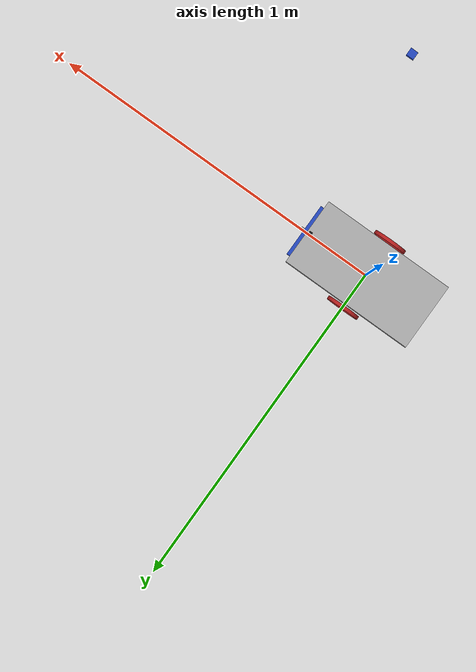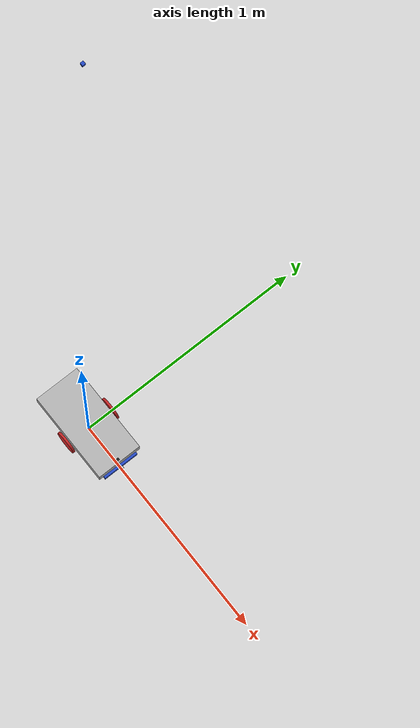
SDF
<?xml version="1.0"?>
<sdf version="1.6">
    <model name="line_robot2">
        <pose>0 0 0.08 0 0 0</pose>

        <!-- body -->
        <link name="body_link">
            <pose>0 0 0 0 0 0</pose>
            <inertial>
                <pose>-0.1 0 0 0 0 0</pose>
                <mass>1.0</mass>
                <inertia>
                    <ixx>0.1</ixx>
                    <ixy>0.0</ixy>
                    <ixz>0.0</ixz>
                    <iyy>0.1</iyy>
                    <iyz>0.0</iyz>
                    <izz>0.1</izz>
                </inertia>
            </inertial>
            <collision name="collision">
                <geometry>
                    <box>
                        <size>0.4 0.2 0.04</size>
                    </box>
                </geometry>
            </collision>
            <visual name="visual">
                <geometry>
                    <mesh>
                        <uri>model://line_robot2/meshes/car.dae</uri>
                    </mesh>
                </geometry>
                <material>
                    <script>
                        <uri>model://line_robot2/materials/scripts</uri>
                        <uri>model://line_robot2/materials/textures</uri>
                        <name>LineRobot2</name>
                    </script>
                </material>
            </visual>
        </link>

        <!-- Sensors -->
        <!-- lidar_link -->
        <link name="lidar_link">
            <pose>0.215 0 -0.03 0 0 0</pose>
            <inertial>
                <mass>0.1</mass>
                <inertia>
                    <ixx>0.1</ixx>
                    <ixy>0.0</ixy>
                    <ixz>0.0</ixz>
                    <iyy>0.1</iyy>
                    <iyz>0.0</iyz>
                    <izz>0.1</izz>
                </inertia>
            </inertial>
            <collision name="collision">
                <geometry>
                    <box>
                        <size>0.01 0.01 0.01</size>
                    </box>
                </geometry>
            </collision>
            <visual name="visual">
                <geometry>
                    <box>
                        <size>0.01 0.01 0.01</size>
                    </box>
                </geometry>
            </visual>
            <material>
                <script>
                    <uri>file://media/materials/scripts/gazebo.material</uri>
                    <name>Gazebo/Red</name>
                </script>
            </material>

            <!-- ray sensor -->
            <sensor name="sensor_ray" type="ray">
                <ray>
                    <scan>
                        <horizontal>
                            <samples>50</samples>
                            <resolution>1.0</resolution>
                            <min_angle>-0.5236</min_angle>
                            <max_angle>0.5236</max_angle>
                        </horizontal>
                    </scan>
                    <range>
                        <min>0.05</min>
                        <max>30.0</max>
                    </range>
                    <update_rate>0.01</update_rate>
                </ray>
                <always_on>true</always_on>
                <plugin name="laserscan" filename="libgazebo_ros_ray_sensor.so">
                    <ros>
                        <namespace>/ray</namespace>
                        <remapping>~/out:=laserscan</remapping>
                    </ros>
                    <output_type>sensor_msgs/LaserScan</output_type>
                </plugin>
            </sensor>
        </link>
        <!-- end lidar -->

        <!-- camera (World) -->
        <link name="world_camera_link">
            <pose>0.2 0 5 0 1.5707 0</pose>
            <inertial>
                <mass>0.001</mass>
                <inertia>
                    <ixx>0.01</ixx>
                    <ixy>0.0</ixy>
                    <ixz>0.0</ixz>
                    <iyy>0.01</iyy>
                    <iyz>0.0</iyz>
                    <izz>0.01</izz>
                </inertia>
            </inertial>
            <collision name="collision">
                <geometry>
                    <box>
                        <size>0.01 0.01 0.01</size>
                    </box>
                </geometry>
            </collision>
            <visual name="visual">
                <geometry>
                    <box>
                        <size>0.01 0.01 0.01</size>
                    </box>
                </geometry>
                <material>
                    <script>
                        <uri>file://media/materials/scripts/gazebo.material</uri>
                        <name>Gazebo/Blue</name>
                    </script>
                </material>
            </visual>

            <sensor type="camera" name="camera_world">
                <pose>-0.2 0 0 0 0 0</pose>
                <update_rate>10.0</update_rate>
                <always_on>true</always_on>
                <visualize>false</visualize>
                <camera name="head">
                    <horizontal_fov>0.64</horizontal_fov>
                    <image>
                        <width>720</width>
                        <height>480</height>
                        <format>R8G8B8</format>
                    </image>
                    <clip>
                        <near>0.221</near>
                        <far>300</far>
                    </clip>
                    <noise>
                        <type>gaussian</type>
                        <mean>0.0</mean>
                        <stddev>0.007</stddev>
                    </noise>
                </camera>
                <plugin name="camera_controller" filename="libgazebo_ros_camera.so">
                    <ros>
                        <namespace>demo_cam</namespace>
                        <remapping>image_raw:=image</remapping>
                        <remapping>camera_info:=camera_info</remapping>
                    </ros>
                </plugin>
            </sensor>
        </link>

        <!-- front camera -->
        <link name="camera_front_link">
            <pose>0.19 0 0.03 0 0 0</pose>
            <inertial>
                <mass>0.001</mass>
                <inertia>
                    <ixx>0.01</ixx>
                    <ixy>0.0</ixy>
                    <ixz>0.0</ixz>
                    <iyy>0.01</iyy>
                    <iyz>0.0</iyz>
                    <izz>0.01</izz>
                </inertia>
            </inertial>
            <collision name="collision">
                <geometry>
                    <box>
                        <size>0.01 0.01 0.01</size>
                    </box>
                </geometry>
            </collision>
            <visual name="visual">
                <geometry>
                    <box>
                        <size>0.01 0.01 0.01</size>
                    </box>
                </geometry>
                <material>
                    <script>
                        <uri>file://media/materials/scripts/gazebo.material</uri>
                        <name>Gazebo/Black</name>
                    </script>
                </material>
            </visual>

            <sensor type="camera" name="camera_front">
                <pose>-0.2 0 0 0 0 0</pose>
                <update_rate>10.0</update_rate>
                <always_on>true</always_on>
                <visualize>false</visualize>
                <camera name="head">
                    <horizontal_fov>0.64</horizontal_fov>
                    <image>
                        <width>640</width>
                        <height>360</height>
                        <format>R8G8B8</format>
                    </image>
                    <clip>
                        <near>0.221</near>
                        <far>300</far>
                    </clip>
                    <noise>
                        <type>gaussian</type>
                        <mean>0.0</mean>
                        <stddev>0.007</stddev>
                    </noise>
                </camera>
                <plugin name="camera_controller" filename="libgazebo_ros_camera.so">
                    <ros>
                        <namespace>camera_front</namespace>
                        <remapping>image_raw:=image</remapping>
                        <remapping>camera_info:=camera_info</remapping>
                    </ros>
                </plugin>
            </sensor>
        </link>

        <link name="left_wheel_link">
            <pose>0 0.11 -0.03 1.5707 0 0</pose>
            <inertial>
                <mass>0.1</mass>
                <inertia>
                    <ixx>0.01</ixx>
                    <ixy>0.0</ixy>
                    <ixz>0.0</ixz>
                    <iyy>0.01</iyy>
                    <iyz>0.0</iyz>
                    <izz>0.01</izz>
                </inertia>
            </inertial>
            <collision name="collision">
                <geometry>
                    <cylinder>
                        <radius>0.05</radius>
                        <length>0.01</length>
                    </cylinder>
                </geometry>
            </collision>
            <visual name="visual">
                <geometry>
                    <cylinder>
                        <radius>0.05</radius>
                        <length>0.01</length>
                    </cylinder>
                </geometry>
                <material>
                    <script>
                        <uri>file://media/materials/scripts/gazebo.material</uri>
                        <name>Gazebo/Red</name>
                    </script>
                </material>
            </visual>
        </link>

        <link name="right_wheel_link">
            <pose>0 -0.11 -0.03 1.5707 0 0</pose>
            <inertial>
                <mass>0.1</mass>
                <inertia>
                    <ixx>0.01</ixx>
                    <ixy>0.0</ixy>
                    <ixz>0.0</ixz>
                    <iyy>0.01</iyy>
                    <iyz>0.0</iyz>
                    <izz>0.01</izz>
                </inertia>
            </inertial>
            <collision name="collision">
                <geometry>
                    <cylinder>
                        <radius>0.05</radius>
                        <length>0.01</length>
                    </cylinder>
                </geometry>
            </collision>
            <visual name="visual">
                <geometry>
                    <cylinder>
                        <radius>0.05</radius>
                        <length>0.01</length>
                    </cylinder>
                </geometry>
                <material>
                    <script>
                        <uri>file://media/materials/scripts/gazebo.material</uri>
                        <name>Gazebo/Red</name>
                    </script>
                </material>
            </visual>
        </link>

        <link name="caster_link">
            <pose>-0.15 0 -0.03 0 0 0</pose>
            <inertial>
                <mass>0.1</mass>
                <inertia>
                    <ixx>0.01</ixx>
                    <ixy>0.0</ixy>
                    <ixz>0.0</ixz>
                    <iyy>0.01</iyy>
                    <iyz>0.0</iyz>
                    <izz>0.01</izz>
                </inertia>
            </inertial>
            <collision name="collision">
                <geometry>
                    <sphere>
                        <radius>0.05</radius>
                    </sphere>
                </geometry>
                <surface>
                    <friction>
                        <ode>
                            <mu>0.01</mu>
                            <mu2>0.01</mu2>
                        </ode>
                    </friction>
                </surface>
            </collision>
            <visual name="visual">
                <geometry>
                    <sphere>
                        <radius>0.05</radius>
                    </sphere>
                </geometry>
            </visual>
        </link>

        <link name="front_sensor_link">
            <pose>0.2 0 -0.03 0 1.5707 0</pose>
            <inertial>
                <mass>0.1</mass>
                <inertia>
                    <ixx>0.01</ixx>
                    <ixy>0.0</ixy>
                    <ixz>0.0</ixz>
                    <iyy>0.01</iyy>
                    <iyz>0.0</iyz>
                    <izz>0.01</izz>
                </inertia>
            </inertial>
            <collision name="collision">
                <geometry>
                    <box>
                        <size>0.02 0.16 0.02</size>
                    </box>
                </geometry>
            </collision>
            <visual name="visual">
                <geometry>
                    <box>
                        <size>0.02 0.16 0.02</size>
                    </box>
                </geometry>
                <material>
                    <script>
                        <uri>file://media/materials/scripts/gazebo.material</uri>
                        <name>Gazebo/Blue</name>
                    </script>
                </material>
            </visual>

            <sensor type="camera" name="camera1">
                <pose>-0.2 0 0 0 0 0</pose>
                <update_rate>10.0</update_rate>
                <always_on>true</always_on>
                <visualize>true</visualize>
                <camera name="head">
                    <horizontal_fov>0.64</horizontal_fov>
                    <image>
                        <width>100</width>
                        <height>1</height>
                        <format>R8G8B8</format>
                    </image>
                    <clip>
                        <near>0.221</near>
                        <far>300</far>
                    </clip>
                    <noise>
                        <type>gaussian</type>
                        <mean>0.0</mean>
                        <stddev>0.007</stddev>
                    </noise>
                </camera>
                <plugin name="camera_controller" filename="libgazebo_ros_camera.so">
                    <ros>
                        <namespace>camera_linetrace</namespace>
                        <remapping>image_raw:=image</remapping>
                        <remapping>camera_info:=camera_info</remapping>
                    </ros>
                </plugin>
            </sensor>
        </link>
        <!-- line-robot -->
        <joint name='left_wheel_joint' type='revolute'>
            <parent>body_link</parent>
            <child>left_wheel_link</child>
            <pose>0 0 0.5 0 0 0</pose>
            <axis>
                <use_parent_model_frame>true</use_parent_model_frame>
                <xyz>0 1 0</xyz>
            </axis>
        </joint>

        <joint name='right_wheel_joint' type='revolute'>
            <parent>body_link</parent>
            <child>right_wheel_link</child>
            <pose>0 0 0.5 0 0 0</pose>
            <axis>
                <use_parent_model_frame>true</use_parent_model_frame>
                <xyz>0 1 0</xyz>
            </axis>
        </joint>

        <joint name='caster_joint' type='fixed'>
            <parent>body_link</parent>
            <child>caster_link</child>
            <pose>0 0 0 0 0 0</pose>
            <axis>
                <use_parent_model_frame>true</use_parent_model_frame>
                <xyz>0 1 0</xyz>
            </axis>
        </joint>

        <joint name='front_sensor_joint' type='fixed'>
            <parent>body_link</parent>
            <child>front_sensor_link</child>
            <pose>0 0 0 0 0 0</pose>
            <axis>
                <use_parent_model_frame>true</use_parent_model_frame>
                <xyz>0 1 0</xyz>
            </axis>
        </joint>

        <joint name='lidar_joint' type='fixed'>
            <parent>body_link</parent>
            <child>lidar_link</child>
            <pose>0 0 0 0 0 0</pose>
            <axis>
                <use_parent_model_frame>true</use_parent_model_frame>
                <xyz>0 1 0</xyz>
            </axis>
        </joint>

        <!-- camera joint -->
        <joint name='world_camera_joint' type='fixed'>
            <parent>body_link</parent>
            <child>world_camera_link</child>
            <pose>0 0 0 0 0 0</pose>
            <axis>
                <use_parent_model_frame>true</use_parent_model_frame>
                <xyz>0 1 0</xyz>
            </axis>
        </joint>

        <joint name='camera_front_joint' type='fixed'>
            <parent>body_link</parent>
            <child>camera_front_link</child>
            <pose>0 0 0 0 0 0</pose>
            <axis>
                <use_parent_model_frame>true</use_parent_model_frame>
                <xyz>0 1 0</xyz>
            </axis>
        </joint>

        <plugin name='diff_drive' filename='libdiff_drive_controller_plugin.so'>
            <left_joint>left_wheel_joint</left_joint>
            <right_joint>right_wheel_joint</right_joint>

            <wheel_separation>1.25</wheel_separation>
            <wheel_diameter>0.6</wheel_diameter>

            <max_wheel_torque>20</max_wheel_torque>
            <max_wheel_acceleration>1.0</max_wheel_acceleration>

            <!-- output -->
            <publish_odom>true</publish_odom>
            <publish_odom_tf>true</publish_odom_tf>
            <publish_wheel_tf>true</publish_wheel_tf>

            <odometry_frame>odom</odometry_frame>
            <robot_base_frame>chassis</robot_base_frame>
        </plugin>
        <!-- line-robot -->
        <plugin name="libgazebo_ros_p3d" filename="libgazebo_ros_p3d.so">
            <ros>
                <namespace>p3d</namespace>
                <remapping>odom:=odom</remapping>
            </ros>
            <frame_name>lidar_link</frame_name>
            <body_name>body_link</body_name>
            <update_rate>200.0</update_rate>
            <gaussian_noise>0.01</gaussian_noise>
        </plugin>

    </model>
</sdf>
